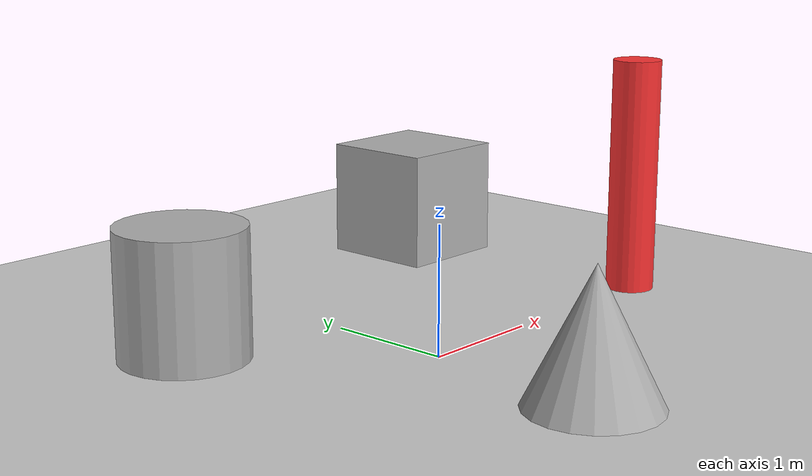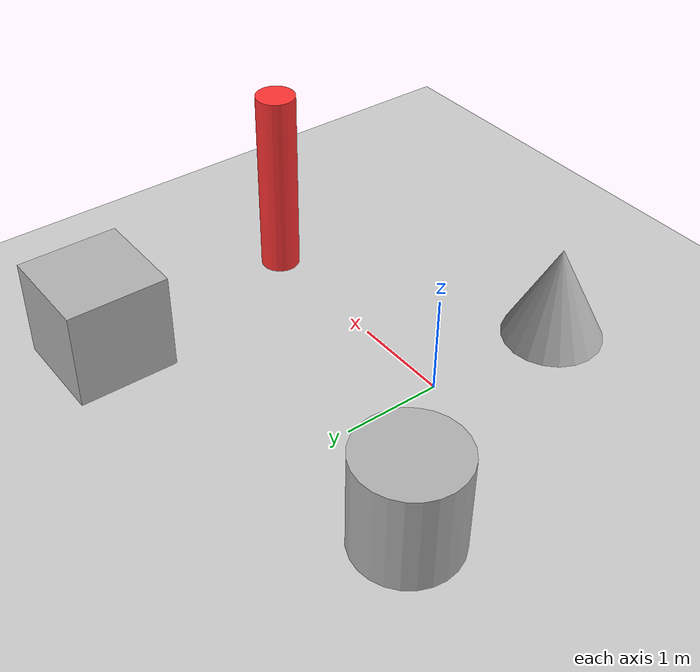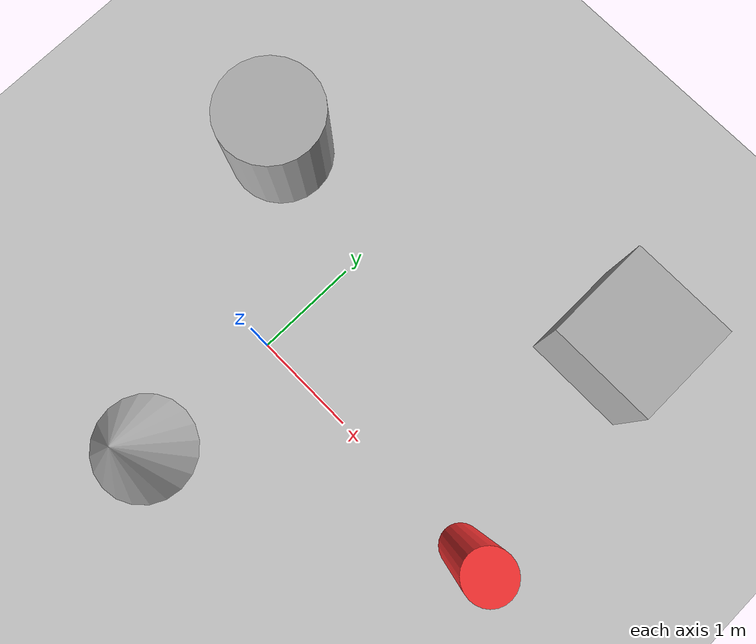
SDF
<sdf version='1.10'>
  <world name='empty'>
    <physics name='1ms' type='ignored'>
      <max_step_size>0.001</max_step_size>
      <real_time_factor>1</real_time_factor>
      <real_time_update_rate>1000</real_time_update_rate>
    </physics>
    <plugin name='gz::sim::systems::Physics' filename='gz-sim-physics-system'/>
    <plugin name='gz::sim::systems::UserCommands' filename='gz-sim-user-commands-system'/>
    <plugin name='gz::sim::systems::SceneBroadcaster' filename='gz-sim-scene-broadcaster-system'/>
    <plugin name='gz::sim::systems::Contact' filename='gz-sim-contact-system'/>
    <plugin name='gz::sim::systems::Sensors' filename='gz-sim-sensors-system'>
      <render_engine>ogre2</render_engine>
    </plugin>
    <gravity>0 0 -9.8000000000000007</gravity>
    <magnetic_field>5.5644999999999998e-06 2.2875799999999999e-05 -4.2388400000000002e-05</magnetic_field>
    <atmosphere type='adiabatic'/>
    <scene>
      <ambient>0.400000006 0.400000006 0.400000006 1</ambient>
      <background>0.699999988 0.699999988 0.699999988 1</background>
      <shadows>true</shadows>
    </scene>
    <model name='ground_plane'>
      <static>true</static>
      <link name='link'>
        <collision name='collision'>
          <geometry>
            <plane>
              <normal>0 0 1</normal>
              <size>100 100</size>
            </plane>
          </geometry>
          <surface>
            <friction>
              <ode/>
            </friction>
            <bounce/>
            <contact/>
          </surface>
        </collision>
        <visual name='visual'>
          <geometry>
            <plane>
              <normal>0 0 1</normal>
              <size>100 100</size>
            </plane>
          </geometry>
          <material>
            <ambient>0.800000012 0.800000012 0.800000012 1</ambient>
            <diffuse>0.800000012 0.800000012 0.800000012 1</diffuse>
            <specular>0.800000012 0.800000012 0.800000012 1</specular>
          </material>
        </visual>
        <pose>0 0 0 0 0 0</pose>
        <inertial>
          <pose>0 0 0 0 0 0</pose>
          <mass>1</mass>
          <inertia>
            <ixx>1</ixx>
            <ixy>0</ixy>
            <ixz>0</ixz>
            <iyy>1</iyy>
            <iyz>0</iyz>
            <izz>1</izz>
          </inertia>
        </inertial>
        <enable_wind>false</enable_wind>
      </link>
      <pose>0 0 0 0 0 0</pose>
      <self_collide>false</self_collide>
    </model>
    <model name='box'>
      <pose>2.2204048176629136 2.2389239453399132 0.5 0 0 0</pose>
      <link name='box_link'>
        <inertial>
          <inertia>
            <ixx>0.16666</ixx>
            <ixy>0</ixy>
            <ixz>0</ixz>
            <iyy>0.16666</iyy>
            <iyz>0</iyz>
            <izz>0.16666</izz>
          </inertia>
          <mass>1</mass>
          <pose>0 0 0 0 0 0</pose>
        </inertial>
        <collision name='box_collision'>
          <geometry>
            <box>
              <size>1 1 1</size>
            </box>
          </geometry>
          <surface>
            <friction>
              <ode/>
            </friction>
            <bounce/>
            <contact/>
          </surface>
        </collision>
        <visual name='box_visual'>
          <geometry>
            <box>
              <size>1 1 1</size>
            </box>
          </geometry>
          <material>
            <ambient>0.300000012 0.300000012 0.300000012 1</ambient>
            <diffuse>0.699999988 0.699999988 0.699999988 1</diffuse>
            <specular>1 1 1 1</specular>
          </material>
        </visual>
        <pose>0 0 0 0 0 0</pose>
        <enable_wind>false</enable_wind>
      </link>
      <static>false</static>
      <self_collide>false</self_collide>
    </model>
    <model name='cone'>
      <pose>-0.091875769216996694 -1.4340212365828422 0.5 0 0 0</pose>
      <link name='cone_link'>
        <inertial>
          <inertia>
            <ixx>0.074999999999999997</ixx>
            <ixy>0</ixy>
            <ixz>0</ixz>
            <iyy>0.074999999999999997</iyy>
            <iyz>0</iyz>
            <izz>0.074999999999999997</izz>
          </inertia>
          <mass>1</mass>
          <pose>0 0 0 0 0 0</pose>
        </inertial>
        <collision name='cone_collision'>
          <geometry>
            <cone>
              <radius>0.5</radius>
              <length>1</length>
            </cone>
          </geometry>
          <surface>
            <friction>
              <ode/>
            </friction>
            <bounce/>
            <contact/>
          </surface>
        </collision>
        <visual name='cone_visual'>
          <geometry>
            <cone>
              <radius>0.5</radius>
              <length>1</length>
            </cone>
          </geometry>
          <material>
            <ambient>0.300000012 0.300000012 0.300000012 1</ambient>
            <diffuse>0.699999988 0.699999988 0.699999988 1</diffuse>
            <specular>1 1 1 1</specular>
          </material>
        </visual>
        <pose>0 0 0 0 0 0</pose>
        <enable_wind>false</enable_wind>
      </link>
      <static>false</static>
      <self_collide>false</self_collide>
    </model>
    <model name='cylinder'>
      <pose>-1.2628579287771364 1.3730865120109803 0.5 0 0 0</pose>
      <link name='cylinder_link'>
        <inertial>
          <inertia>
            <ixx>0.14580000000000001</ixx>
            <ixy>0</ixy>
            <ixz>0</ixz>
            <iyy>0.14580000000000001</iyy>
            <iyz>0</iyz>
            <izz>0.125</izz>
          </inertia>
          <mass>1</mass>
          <pose>0 0 0 0 0 0</pose>
        </inertial>
        <collision name='cylinder_collision'>
          <geometry>
            <cylinder>
              <radius>0.5</radius>
              <length>1</length>
            </cylinder>
          </geometry>
          <surface>
            <friction>
              <ode/>
            </friction>
            <bounce/>
            <contact/>
          </surface>
        </collision>
        <visual name='cylinder_visual'>
          <geometry>
            <cylinder>
              <radius>0.5</radius>
              <length>1</length>
            </cylinder>
          </geometry>
          <material>
            <ambient>0.300000012 0.300000012 0.300000012 1</ambient>
            <diffuse>0.699999988 0.699999988 0.699999988 1</diffuse>
            <specular>1 1 1 1</specular>
          </material>
        </visual>
        <pose>0 0 0 0 0 0</pose>
        <enable_wind>false</enable_wind>
      </link>
      <static>false</static>
      <self_collide>false</self_collide>
    </model>
    <model name='person'>
      <static>true</static>
      <pose>2.5 0 0.975 0 0 0</pose>
      <link name='link'>
        <visual name='body'>
          <geometry>
            <cylinder><radius>0.2</radius><length>1.95</length></cylinder>
          </geometry>
          <material>
            <ambient>1 0.2 0.2 1</ambient>
            <diffuse>1 0.2 0.2 1</diffuse>
          </material>
        </visual>
      </link>
    </model>

    <light name='sun' type='directional'>
      <pose>0 0 10 0 0 0</pose>
      <cast_shadows>true</cast_shadows>
      <intensity>1</intensity>
      <direction>-0.5 0.10000000000000001 -0.90000000000000002</direction>
      <diffuse>0.800000012 0.800000012 0.800000012 1</diffuse>
      <specular>0.200000003 0.200000003 0.200000003 1</specular>
      <attenuation>
        <range>1000</range>
        <linear>0.01</linear>
        <constant>0.90000000000000002</constant>
        <quadratic>0.001</quadratic>
      </attenuation>
      <spot>
        <inner_angle>0</inner_angle>
        <outer_angle>0</outer_angle>
        <falloff>0</falloff>
      </spot>
    </light>
  </world>
</sdf>
